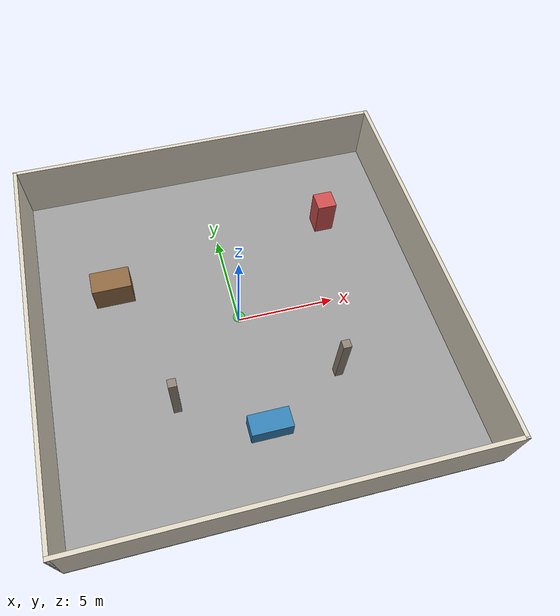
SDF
<?xml version="1.0" ?>
<sdf version="1.11">
  <!--
    Indoor 20m x 20m room without roof — for PX4 + Gazebo Harmonic (8.x)
    Usage:
      gz sim worlds/indoor_20x20.sdf
      export PX4_GZ_WORLD=worlds/indoor_20x20.sdf && make px4_sitl gz_x500
  -->
  <world name="indoor_room">

    <!-- ===== Physics & Environment ===== -->
    <physics name="1ms" type="ignored">
      <max_step_size>0.001</max_step_size>
      <real_time_factor>1.0</real_time_factor>
    </physics>
    <gravity>0 0 -9.8</gravity>
    <magnetic_field>6e-06 2.3e-05 -4.2e-05</magnetic_field>
    <atmosphere type="adiabatic"/>

    <!-- Zurich coordinates (matches PX4 default) -->
    <spherical_coordinates>
      <surface_model>EARTH_WGS84</surface_model>
      <world_frame_orientation>ENU</world_frame_orientation>
      <latitude_deg>47.397971057728974</latitude_deg>
      <longitude_deg>8.546163739800146</longitude_deg>
      <elevation>0</elevation>
    </spherical_coordinates>
    <plugin
      filename="gz-sim-physics-system"
      name="gz::sim::systems::Physics">
    </plugin>
    <plugin
      filename="gz-sim-user-commands-system"
      name="gz::sim::systems::UserCommands">
    </plugin>
    <plugin
      filename="gz-sim-sensors-system"
      name="gz::sim::systems::Sensors">
      <render_engine>ogre2</render_engine>
    </plugin>
    <plugin
      filename="gz-sim-scene-broadcaster-system"
      name="gz::sim::systems::SceneBroadcaster">
    </plugin>
    <plugin
      filename="gz-sim-contact-system"
      name="gz::sim::systems::Contact">
    </plugin>
    <plugin
      filename="gz-sim-imu-system"
      name="gz::sim::systems::Imu">
    </plugin>
    <plugin
      filename="gz-sim-magnetometer-system"
      name="gz::sim::systems::Magnetometer">
    </plugin>
    <plugin
      filename="gz-sim-navsat-system"
      name="gz::sim::systems::NavSat">
    </plugin>
    <plugin
      filename="gz-sim-air-pressure-system"
      name="gz::sim::systems::AirPressure">
    </plugin>
    <plugin
      filename="gz-sim-air-speed-system"
      name="gz::sim::systems::AirSpeed">
    </plugin>
    <plugin
      filename="gz-sim-apply-link-wrench-system"
      name="gz::sim::systems::ApplyLinkWrench">
    </plugin>
    <plugin
      filename="gz-sim-wind-system"
      name="gz::sim::systems::Wind">
    </plugin>

    <!-- ===== Scene ===== -->
    <scene>
      <ambient>0.4 0.4 0.4 1.0</ambient>
      <background>0.34 0.39 0.43 1.0</background>
      <shadows>true</shadows>
      <grid>false</grid>
    </scene>

    <!-- ===== Light from above (no roof, so direct sunlight) ===== -->
    <light type="directional" name="sun">
      <cast_shadows>true</cast_shadows>
      <pose>0 0 15 0 0 0</pose>
      <diffuse>0.9 0.9 0.85 1</diffuse>
      <specular>0.3 0.3 0.3 1</specular>
      <attenuation>
        <range>100</range>
        <constant>0.9</constant>
        <linear>0.01</linear>
        <quadratic>0.001</quadratic>
      </attenuation>
      <direction>0.3 -0.3 -0.9</direction>
    </light>

    <!-- ===== GUI ===== -->
    <gui fullscreen="0">
      <plugin filename="MinimalScene" name="3D View">
        <gz-gui>
          <title>3D View</title>
          <property type="bool" key="showTitleBar">false</property>
          <property type="string" key="state">docked</property>
        </gz-gui>
        <engine>ogre2</engine>
        <scene>scene</scene>
        <ambient_light>0.4 0.4 0.4</ambient_light>
        <background_color>0.8 0.8 0.8</background_color>
        <camera_pose>-12 -12 10 0 0.55 0.7</camera_pose>
      </plugin>
      <plugin filename="GzSceneManager" name="Scene Manager">
        <gz-gui>
          <property key="resizable" type="bool">false</property>
          <property key="width" type="double">5</property>
          <property key="height" type="double">5</property>
          <property key="state" type="string">floating</property>
          <property key="showTitleBar" type="bool">false</property>
        </gz-gui>
      </plugin>
      <plugin filename="InteractiveViewControl" name="Interactive view control">
        <gz-gui>
          <property key="resizable" type="bool">false</property>
          <property key="width" type="double">5</property>
          <property key="height" type="double">5</property>
          <property key="state" type="string">floating</property>
          <property key="showTitleBar" type="bool">false</property>
        </gz-gui>
      </plugin>
      <plugin filename="CameraTracking" name="Camera Tracking">
        <gz-gui>
          <property key="resizable" type="bool">false</property>
          <property key="width" type="double">5</property>
          <property key="height" type="double">5</property>
          <property key="state" type="string">floating</property>
          <property key="showTitleBar" type="bool">false</property>
        </gz-gui>
      </plugin>
      <plugin filename="TransformControl" name="Transform control">
        <gz-gui>
          <title>Transform control</title>
          <anchors target="3D View">
            <line own="left" target="left"/>
            <line own="top" target="top"/>
          </anchors>
          <property key="resizable" type="bool">false</property>
          <property key="width" type="double">230</property>
          <property key="height" type="double">50</property>
          <property key="state" type="string">floating</property>
          <property key="showTitleBar" type="bool">false</property>
          <property key="cardBackground" type="string">#666666</property>
        </gz-gui>
      </plugin>
      <plugin filename="WorldControl" name="World control">
        <gz-gui>
          <title>World control</title>
          <property type="bool" key="showTitleBar">false</property>
          <property type="bool" key="resizable">false</property>
          <property type="double" key="height">72</property>
          <property type="double" key="z">1</property>
          <property type="string" key="state">floating</property>
          <anchors target="3D View">
            <line own="left" target="left"/>
            <line own="bottom" target="bottom"/>
          </anchors>
        </gz-gui>
        <play_pause>true</play_pause>
        <step>true</step>
        <start_paused>true</start_paused>
        <use_event>true</use_event>
      </plugin>
      <plugin filename="WorldStats" name="World stats">
        <gz-gui>
          <title>World stats</title>
          <property type="bool" key="showTitleBar">false</property>
          <property type="bool" key="resizable">false</property>
          <property type="double" key="height">110</property>
          <property type="double" key="width">290</property>
          <property type="double" key="z">1</property>
          <property type="string" key="state">floating</property>
          <anchors target="3D View">
            <line own="right" target="right"/>
            <line own="bottom" target="bottom"/>
          </anchors>
        </gz-gui>
        <sim_time>true</sim_time>
        <real_time>true</real_time>
        <real_time_factor>true</real_time_factor>
        <iterations>true</iterations>
      </plugin>
      <plugin filename="ComponentInspector" name="Component inspector">
        <gz-gui>
          <property type="string" key="state">docked_collapsed</property>
        </gz-gui>
      </plugin>
      <plugin filename="EntityTree" name="Entity tree">
        <gz-gui>
          <property type="string" key="state">docked_collapsed</property>
        </gz-gui>
      </plugin>
      <plugin filename="KeyPublisher" name="Key publisher">
        <gz-gui>
          <anchors target="3D View">
            <line own="right" target="right"/>
            <line own="top" target="top"/>
          </anchors>
          <property key="resizable" type="bool">false</property>
          <property key="width" type="double">5</property>
          <property key="height" type="double">5</property>
          <property key="state" type="string">floating</property>
          <property key="showTitleBar" type="bool">false</property>
        </gz-gui>
      </plugin>
      <plugin filename="EntityContextMenuPlugin" name="Entity context menu">
        <gz-gui>
          <property key="state" type="string">floating</property>
          <property key="width" type="double">5</property>
          <property key="height" type="double">5</property>
          <property key="showTitleBar" type="bool">false</property>
        </gz-gui>
      </plugin>
    </gui>

    <!--  Room geometry — 20m × 20m, 3m tall walls, NO roof               -->
    <!--  Origin at room center (x: -10..10, y: -10..10, z: 0..3)         -->

    <!-- ====== Floor ====== -->
    <model name="floor">
      <static>true</static>
      <pose>0 0 -0.05 0 0 0</pose>
      <link name="floor_link">
        <collision name="floor_collision">
          <geometry>
            <box>
              <size>20 20 0.1</size>
            </box>
          </geometry>
        </collision>
        <visual name="floor_visual">
          <geometry>
            <box>
              <size>20 20 0.1</size>
            </box>
          </geometry>
          <material>
            <ambient>0.5 0.5 0.5 1</ambient>
            <diffuse>0.6 0.6 0.6 1</diffuse>
            <specular>0.1 0.1 0.1 1</specular>
          </material>
        </visual>
      </link>
    </model>

    <!-- ====== North wall (y = +10) ====== -->
    <model name="wall_north">
      <static>true</static>
      <pose>0 9.9 1.5 0 0 0</pose>
      <link name="wall_north_link">
        <collision name="wall_north_collision">
          <geometry>
            <box>
              <size>20 0.2 3.0</size>
            </box>
          </geometry>
        </collision>
        <visual name="wall_north_visual">
          <geometry>
            <box>
              <size>20 0.2 3.0</size>
            </box>
          </geometry>
          <material>
            <ambient>0.7 0.67 0.6 1</ambient>
            <diffuse>0.85 0.82 0.75 1</diffuse>
            <specular>0.05 0.05 0.05 1</specular>
          </material>
        </visual>
      </link>
    </model>

    <!-- ====== South wall (y = -10) ====== -->
    <model name="wall_south">
      <static>true</static>
      <pose>0 -9.9 1.5 0 0 0</pose>
      <link name="wall_south_link">
        <collision name="wall_south_collision">
          <geometry>
            <box>
              <size>20 0.2 3.0</size>
            </box>
          </geometry>
        </collision>
        <visual name="wall_south_visual">
          <geometry>
            <box>
              <size>20 0.2 3.0</size>
            </box>
          </geometry>
          <material>
            <ambient>0.7 0.67 0.6 1</ambient>
            <diffuse>0.85 0.82 0.75 1</diffuse>
            <specular>0.05 0.05 0.05 1</specular>
          </material>
        </visual>
      </link>
    </model>

    <!-- ====== East wall (x = +10) ====== -->
    <model name="wall_east">
      <static>true</static>
      <pose>9.9 0 1.5 0 0 0</pose>
      <link name="wall_east_link">
        <collision name="wall_east_collision">
          <geometry>
            <box>
              <size>0.2 20 3.0</size>
            </box>
          </geometry>
        </collision>
        <visual name="wall_east_visual">
          <geometry>
            <box>
              <size>0.2 20 3.0</size>
            </box>
          </geometry>
          <material>
            <ambient>0.7 0.67 0.6 1</ambient>
            <diffuse>0.85 0.82 0.75 1</diffuse>
            <specular>0.05 0.05 0.05 1</specular>
          </material>
        </visual>
      </link>
    </model>

    <!-- ====== West wall (x = -10) ====== -->
    <model name="wall_west">
      <static>true</static>
      <pose>-9.9 0 1.5 0 0 0</pose>
      <link name="wall_west_link">
        <collision name="wall_west_collision">
          <geometry>
            <box>
              <size>0.2 20 3.0</size>
            </box>
          </geometry>
        </collision>
        <visual name="wall_west_visual">
          <geometry>
            <box>
              <size>0.2 20 3.0</size>
            </box>
          </geometry>
          <material>
            <ambient>0.7 0.67 0.6 1</ambient>
            <diffuse>0.85 0.82 0.75 1</diffuse>
            <specular>0.05 0.05 0.05 1</specular>
          </material>
        </visual>
      </link>
    </model>

    <!--  Interior obstacles — useful for drone flight testing              -->

    <!-- ====== Pillar A (center-left) ====== -->
    <model name="pillar_a">
      <static>true</static>
      <pose>-4 -4 1.5 0 0 0</pose>
      <link name="pillar_a_link">
        <collision name="pillar_a_collision">
          <geometry>
            <box>
              <size>0.4 0.4 3.0</size>
            </box>
          </geometry>
        </collision>
        <visual name="pillar_a_visual">
          <geometry>
            <box>
              <size>0.4 0.4 3.0</size>
            </box>
          </geometry>
          <material>
            <ambient>0.45 0.42 0.38 1</ambient>
            <diffuse>0.55 0.5 0.45 1</diffuse>
            <specular>0.05 0.05 0.05 1</specular>
          </material>
        </visual>
      </link>
    </model>

    <!-- ====== Pillar B (center-right) ====== -->
    <model name="pillar_b">
      <static>true</static>
      <pose>4 -4 1.5 0 0 0</pose>
      <link name="pillar_b_link">
        <collision name="pillar_b_collision">
          <geometry>
            <box>
              <size>0.4 0.4 3.0</size>
            </box>
          </geometry>
        </collision>
        <visual name="pillar_b_visual">
          <geometry>
            <box>
              <size>0.4 0.4 3.0</size>
            </box>
          </geometry>
          <material>
            <ambient>0.45 0.42 0.38 1</ambient>
            <diffuse>0.55 0.5 0.45 1</diffuse>
            <specular>0.05 0.05 0.05 1</specular>
          </material>
        </visual>
      </link>
    </model>

    <!-- ====== Low block (near south) ====== -->
    <model name="low_block">
      <static>true</static>
      <pose>0 -6 0.5 0 0 0</pose>
      <link name="low_block_link">
        <collision name="low_block_collision">
          <geometry>
            <box>
              <size>2.0 1.0 1.0</size>
            </box>
          </geometry>
        </collision>
        <visual name="low_block_visual">
          <geometry>
            <box>
              <size>2.0 1.0 1.0</size>
            </box>
          </geometry>
          <material>
            <ambient>0.3 0.4 0.5 1</ambient>
            <diffuse>0.2 0.5 0.7 1</diffuse>
            <specular>0.1 0.1 0.1 1</specular>
          </material>
        </visual>
      </link>
    </model>

    <!-- ====== Tall box (near north-east) ====== -->
    <model name="tall_box">
      <static>true</static>
      <pose>6 5 1.0 0 0 0</pose>
      <link name="tall_box_link">
        <collision name="tall_box_collision">
          <geometry>
            <box>
              <size>1.0 1.0 2.0</size>
            </box>
          </geometry>
        </collision>
        <visual name="tall_box_visual">
          <geometry>
            <box>
              <size>1.0 1.0 2.0</size>
            </box>
          </geometry>
          <material>
            <ambient>0.5 0.3 0.3 1</ambient>
            <diffuse>0.8 0.3 0.3 1</diffuse>
            <specular>0.1 0.1 0.1 1</specular>
          </material>
        </visual>
      </link>
    </model>

    <!-- ====== Table (north-west) ====== -->
    <model name="table">
      <static>true</static>
      <pose>-6 3 0.75 0 0 0</pose>
      <link name="table_link">
        <collision name="table_collision">
          <geometry>
            <box>
              <size>2.0 1.2 1.5</size>
            </box>
          </geometry>
        </collision>
        <visual name="table_visual">
          <geometry>
            <box>
              <size>2.0 1.2 1.5</size>
            </box>
          </geometry>
          <material>
            <ambient>0.4 0.3 0.2 1</ambient>
            <diffuse>0.55 0.4 0.25 1</diffuse>
            <specular>0.05 0.05 0.05 1</specular>
          </material>
        </visual>
      </link>
    </model>

    <!--  Spawn point for PX4 drone (X500 size)                             -->
    <!--  Centered, 0.3m above floor                                        -->
    <model name="drone_spawn">
      <static>true</static>
      <pose>0 0 0.3 0 0 0</pose>
      <link name="spawn_link">
        <visual name="spawn_visual">
          <geometry>
            <cylinder>
              <length>0.01</length>
              <radius>0.3</radius>
            </cylinder>
          </geometry>
          <material>
            <ambient>0 1 0 0.5</ambient>
            <diffuse>0 1 0 0.5</diffuse>
          </material>
        </visual>
      </link>
    </model>

  </world>
</sdf>
